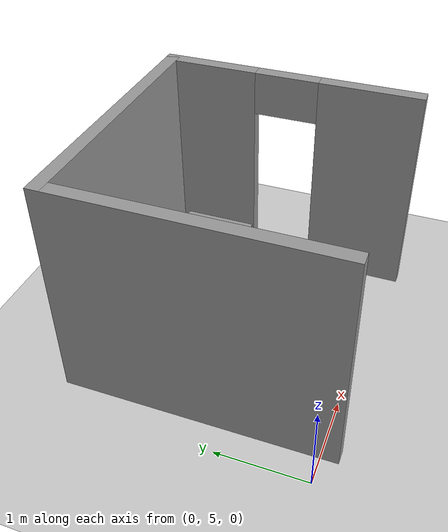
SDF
<sdf version="1.9">
 <world name="default">
  <model name="ground_plane">
   <static>true</static>
   <link name="link">
    <collision name="collision">
     <geometry><plane><normal>0 0 1</normal><size>100 100</size></plane></geometry>
     <surface><friction><ode><mu>100</mu><mu2>50</mu2></ode></friction></surface>
    </collision>
    <visual name="visual">
     <cast_shadows>false</cast_shadows>
     <geometry><plane><normal>0 0 1</normal><size>100 100</size></plane></geometry>
     <material>
      <script><uri>file://media/materials/scripts/gazebo.material</uri><name>Gazebo/Grey</name></script>
     </material>
    </visual>
   </link>
  </model>
  <model name="cma_qe">
   <pose>1.7956099999999999 6.3122800000000003 0 0 0 0</pose>
   <link name="Wall_15">
    <collision name="Wall_15_Collision">
     <geometry><box><size>3 0.14999999999999999 2.5</size></box></geometry>
     <pose>0 0 1.25 0 0 0</pose>
    </collision>
    <visual name="Wall_15_Visual">
     <pose>0 0 1.25 0 0 0</pose>
     <geometry><box><size>3 0.14999999999999999 2.5</size></box></geometry>
     <material>
      <script><uri>file://media/materials/scripts/gazebo.material</uri><name>Gazebo/Grey</name></script>
      <ambient>1 1 1 1</ambient>
     </material>
    </visual>
    <pose>-1.425 0 0 0 0 1.5708</pose>
   </link>
   <link name="Wall_16">
    <collision name="Wall_16_Collision">
     <geometry><box><size>3 0.14999999999999999 2.5</size></box></geometry>
     <pose>0 0 1.25 0 0 0</pose>
    </collision>
    <visual name="Wall_16_Visual">
     <pose>0 0 1.25 0 0 0</pose>
     <geometry><box><size>3 0.14999999999999999 2.5</size></box></geometry>
     <material>
      <script><uri>file://media/materials/scripts/gazebo.material</uri><name>Gazebo/Grey</name></script>
      <ambient>1 1 1 1</ambient>
     </material>
    </visual>
    <pose>0 1.425 0 0 0 0</pose>
   </link>
   <link name="Wall_17">
    <pose>1.425 0 0 0 0 -1.5708</pose>
    <visual name="Wall_17_Visual_0">
     <pose>-0.94499999999999995 0 1.25 0 0 0</pose>
     <geometry><box><size>1.1100000000000001 0.14999999999999999 2.5</size></box></geometry>
     <material>
      <script><uri>file://media/materials/scripts/gazebo.material</uri><name>Gazebo/Grey</name></script>
      <ambient>1 1 1 1</ambient>
     </material>
    </visual>
    <collision name="Wall_17_Collision_0">
     <geometry><box><size>1.1100000000000001 0.14999999999999999 2.5</size></box></geometry>
     <pose>-0.94499999999999995 0 1.25 0 0 0</pose>
    </collision>
    <visual name="Wall_17_Visual_1">
     <pose>0.92000000000000004 0 1.25 0 0 0</pose>
     <geometry><box><size>1.1599999999999999 0.14999999999999999 2.5</size></box></geometry>
     <material>
      <script><uri>file://media/materials/scripts/gazebo.material</uri><name>Gazebo/Grey</name></script>
      <ambient>1 1 1 1</ambient>
     </material>
    </visual>
    <collision name="Wall_17_Collision_1">
     <geometry><box><size>1.1599999999999999 0.14999999999999999 2.5</size></box></geometry>
     <pose>0.92000000000000004 0 1.25 0 0 0</pose>
    </collision>
    <visual name="Wall_17_Visual_2">
     <pose>-0.025000000000000001 0 2.25 0 0 0</pose>
     <geometry><box><size>0.72999999999999998 0.14999999999999999 0.5</size></box></geometry>
     <material>
      <script><uri>file://media/materials/scripts/gazebo.material</uri><name>Gazebo/Grey</name></script>
      <ambient>1 1 1 1</ambient>
     </material>
    </visual>
    <collision name="Wall_17_Collision_2">
     <geometry><box><size>0.72999999999999998 0.14999999999999999 0.5</size></box></geometry>
     <pose>-0.025000000000000001 0 2.25 0 0 0</pose>
    </collision>
   </link>
   <static>true</static>
  </model>
  <model name="cma_emp_a1">
   <link name="link_0">
    <pose>-1.9999999999999999e-06 -3.9999999999999998e-06 0 0 0 0</pose>
    <inertial>
     <mass>0.79299399999999998</mass>
     <inertia>
      <ixx>0.062616099999999994</ixx>
      <ixy>0</ixy>
      <ixz>0</ixz>
      <iyy>0.287022</iyy>
      <iyz>0</iyz>
      <izz>0.32261499999999999</izz>
     </inertia>
    </inertial>
    <visual name="visual">
     <geometry><box><size>2.03443 0.86201499999999998 0.45218000000000003</size></box></geometry>
     <material>
      <lighting>true</lighting>
      <script><uri>file://media/materials/scripts/gazebo.material</uri><name>Gazebo/Grey</name></script>
      <ambient>0.300000012 0.300000012 0.300000012 1</ambient>
      <diffuse>0.699999988 0.699999988 0.699999988 1</diffuse>
      <specular>0.00999999978 0.00999999978 0.00999999978 1</specular>
      <emissive>0 0 0 1</emissive>
     </material>
    </visual>
    <collision name="collision">
     <geometry><box><size>2.03443 0.86201499999999998 0.45218000000000003</size></box></geometry>
     <surface>
      <friction>
       <ode><mu>1</mu><mu2>1</mu2><fdir1>0 0 0</fdir1><slip1>0</slip1><slip2>0</slip2></ode>
       <torsional>
        <coefficient>1</coefficient>
        <patch_radius>0</patch_radius>
        <surface_radius>0</surface_radius>
        <use_patch_radius>true</use_patch_radius>
        <ode><slip>0</slip></ode>
       </torsional>
      </friction>
      <bounce><restitution_coefficient>0</restitution_coefficient><threshold>1000000</threshold></bounce>
      <contact>
       <collide_without_contact>false</collide_without_contact>
       <collide_without_contact_bitmask>1</collide_without_contact_bitmask>
       <collide_bitmask>1</collide_bitmask>
       <ode>
        <soft_cfm>0</soft_cfm>
        <soft_erp>0.20000000000000001</soft_erp>
        <kp>10000000000000</kp>
        <kd>1</kd>
        <max_vel>0.01</max_vel>
        <min_depth>0</min_depth>
       </ode>
       <bullet>
        <split_impulse>true</split_impulse>
        <split_impulse_penetration_threshold>-0.01</split_impulse_penetration_threshold>
        <soft_cfm>0</soft_cfm>
        <soft_erp>0.20000000000000001</soft_erp>
        <kp>10000000000000</kp>
        <kd>1</kd>
       </bullet>
      </contact>
     </surface>
    </collision>
   </link>
   <static>false</static>
   <pose>2.0689500000000001 7.1321899999999996 0.22608300000000001 1.7e-05 0 0</pose>
  </model>
  <model name="cma_emp_a3">
   <link name="link_2">
    <pose>0 -3.0000000000000001e-06 0 0 0 0</pose>
    <inertial>
     <mass>0.77009300000000003</mass>
     <inertia>
      <ixx>0.310363</ixx>
      <ixy>0</ixy>
      <ixz>0</ixz>
      <iyy>0.074095300000000003</iyy>
      <iyz>0</iyz>
      <izz>0.25610899999999998</izz>
     </inertia>
    </inertial>
    <visual name="visual">
     <geometry><box><size>0.393179 1.9586300000000001 1</size></box></geometry>
     <material>
      <lighting>true</lighting>
      <script><uri>file://media/materials/scripts/gazebo.material</uri><name>Gazebo/Grey</name></script>
      <ambient>0.300000012 0.300000012 0.300000012 1</ambient>
      <diffuse>0.699999988 0.699999988 0.699999988 1</diffuse>
      <specular>0.00999999978 0.00999999978 0.00999999978 1</specular>
      <emissive>0 0 0 1</emissive>
     </material>
    </visual>
    <collision name="collision">
     <geometry><box><size>0.393179 1.9586300000000001 1</size></box></geometry>
     <surface>
      <friction>
       <ode><mu>1</mu><mu2>1</mu2><fdir1>0 0 0</fdir1><slip1>0</slip1><slip2>0</slip2></ode>
       <torsional>
        <coefficient>1</coefficient>
        <patch_radius>0</patch_radius>
        <surface_radius>0</surface_radius>
        <use_patch_radius>true</use_patch_radius>
        <ode><slip>0</slip></ode>
       </torsional>
      </friction>
      <bounce><restitution_coefficient>0</restitution_coefficient><threshold>1000000</threshold></bounce>
      <contact>
       <collide_without_contact>false</collide_without_contact>
       <collide_without_contact_bitmask>1</collide_without_contact_bitmask>
       <collide_bitmask>1</collide_bitmask>
       <ode>
        <soft_cfm>0</soft_cfm>
        <soft_erp>0.20000000000000001</soft_erp>
        <kp>10000000000000</kp>
        <kd>1</kd>
        <max_vel>0.01</max_vel>
        <min_depth>0</min_depth>
       </ode>
       <bullet>
        <split_impulse>true</split_impulse>
        <split_impulse_penetration_threshold>-0.01</split_impulse_penetration_threshold>
        <soft_cfm>0</soft_cfm>
        <soft_erp>0.20000000000000001</soft_erp>
        <kp>10000000000000</kp>
        <kd>1</kd>
       </bullet>
      </contact>
     </surface>
    </collision>
   </link>
   <static>false</static>
   <pose>0.75775800000000004 5.97241 0.5 1.2924697071166906e-26 -2.0000000000000008e-06 -0.00010999999999999999</pose>
  </model>
 </world>
</sdf>
